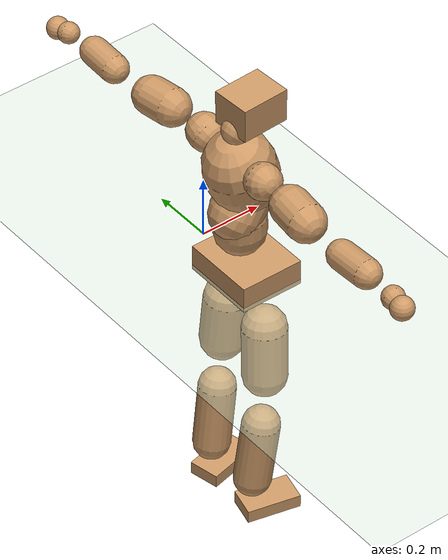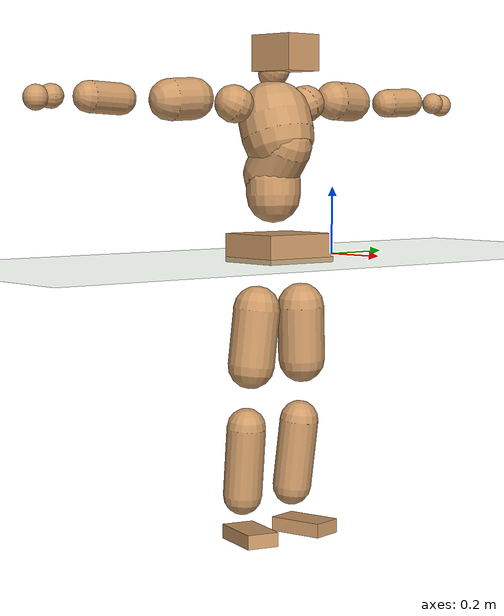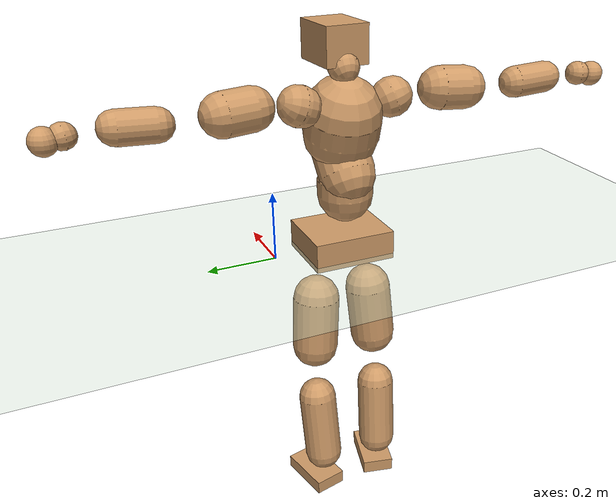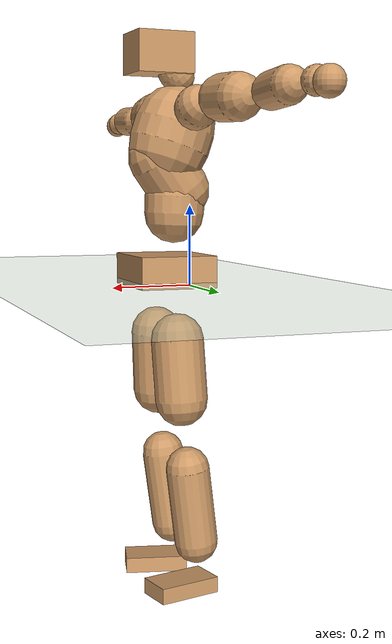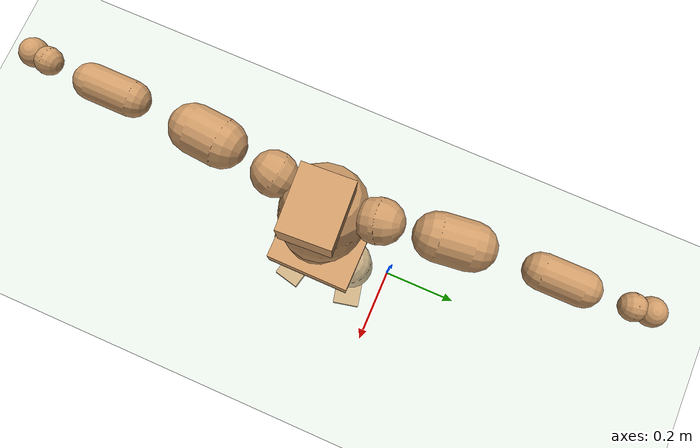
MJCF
<mujoco model="humanoid">
  <compiler coordinate="local" angle="radian"/>
  <default>
    <joint damping="0.0" armature="0.01" stiffness="0.0" limited="true"/>
    <geom conaffinity="1" condim="3" contype="7" margin="0.001" rgba="0.8 0.6 .4 1"/>
  </default>
  <asset>
    <texture type="skybox" builtin="gradient" rgb1=".4 .5 .6" rgb2="0 0 0" width="100" height="100"/>
    <texture builtin="flat" height="1278" mark="cross" markrgb="1 1 1" name="texgeom" random="0.01" rgb1="0.8 0.6 0.4" rgb2="0.8 0.6 0.4" type="cube" width="127"/>
    <texture builtin="checker" height="100" name="texplane" rgb1="0 0 0" rgb2="0.8 0.8 0.8" type="2d" width="100"/>
    <material name="MatPlane" reflectance="0.5" shininess="1" specular="1" texrepeat="60 60" texture="texplane"/>
    <material name="geom" texture="texgeom" texuniform="true"/>
  </asset>
  <worldbody>
    <light cutoff="100" diffuse="1 1 1" dir="-0 0 -1.3" directional="true" exponent="1" pos="0 0 1.3" specular=".1 .1 .1"/>
    <geom conaffinity="1" condim="3" name="floor" pos="0 0 0" rgba="0.8 0.9 0.8 1" size="100 100 .2" type="plane" material="MatPlane"/>
    <body name="Pelvis" pos="0.0008 -0.2057 0.038">
      <freejoint name="Pelvis"/>
      <geom type="box" contype="1" conaffinity="1" density="5359.375205" pos="-0.0057 0.0000 -0.0131" size="0.1025 0.12 0.0421" quat="1.0000 0.0000 0.0000 -0.0023" name="Pelvis"/>
      <body name="L_Hip" pos="-0.0038 0.0802 -0.092">
        <joint name="L_Hip_x" type="hinge" pos="0 0 0" axis="1 0 0" stiffness="1600" damping="160" armature="0.02" range="-180.0000 180.0000"/>
        <joint name="L_Hip_y" type="hinge" pos="0 0 0" axis="0 1 0" stiffness="1600" damping="160" armature="0.02" range="-180.0000 180.0000"/>
        <joint name="L_Hip_z" type="hinge" pos="0 0 0" axis="0 0 1" stiffness="1600" damping="160" armature="0.02" range="-180.0000 180.0000"/>
        <geom type="capsule" contype="1" conaffinity="1" density="2040.816327" size="0.0694" fromto="-0.0046 0.0067 -0.0990 -0.0121 0.0175 -0.2595" name="L_Hip"/>
        <body name="L_Knee" pos="-0.0167 0.0241 -0.3585">
          <joint name="L_Knee_x" type="hinge" pos="0 0 0" axis="1 0 0" stiffness="1600" damping="160" armature="0.02" range="-180.0000 180.0000"/>
          <joint name="L_Knee_y" type="hinge" pos="0 0 0" axis="0 1 0" stiffness="1600" damping="160" armature="0.02" range="-180.0000 180.0000"/>
          <joint name="L_Knee_z" type="hinge" pos="0 0 0" axis="0 0 1" stiffness="1600" damping="160" armature="0.02" range="-180.0000 180.0000"/>
          <geom type="capsule" contype="1" conaffinity="1" density="1234.567901" size="0.0582" fromto="-0.0112 -0.0025 -0.0874 -0.0373 -0.0082 -0.2919" name="L_Knee"/>
          <body name="L_Ankle" pos="-0.0485 -0.0107 -0.3793">
            <joint name="L_Ankle_x" type="hinge" pos="0 0 0" axis="1 0 0" stiffness="1600" damping="160" armature="0.02" range="-180.0000 180.0000"/>
            <joint name="L_Ankle_y" type="hinge" pos="0 0 0" axis="0 1 0" stiffness="1600" damping="160" armature="0.02" range="-180.0000 180.0000"/>
            <joint name="L_Ankle_z" type="hinge" pos="0 0 0" axis="0 0 1" stiffness="1600" damping="160" armature="0.02" range="-180.0000 180.0000"/>
            <geom type="box" contype="1" conaffinity="1" density="999.999995" pos="0.0577 0.0126 -0.0273" size="0.0853 0.0494 0.021" quat="0.9942 0.0000 0.0000 0.1077" name="L_Ankle"/>
            <body name="L_Toe" pos="0.1154 0.0253 -0.0547">
              <joint name="L_Toe_x" type="hinge" pos="0 0 0" axis="1 0 0" stiffness="1000" damping="100" armature="0.02" range="-180.0000 180.0000"/>
              <joint name="L_Toe_y" type="hinge" pos="0 0 0" axis="0 1 0" stiffness="1000" damping="100" armature="0.02" range="-180.0000 180.0000"/>
              <joint name="L_Toe_z" type="hinge" pos="0 0 0" axis="0 0 1" stiffness="1000" damping="100" armature="0.02" range="-180.0000 180.0000"/>
              <geom type="box" contype="1" conaffinity="1" density="8242498.66691" pos="0.0000 0.0000 0.0268" size="0.001 0.0025 0.001" quat="0.9935 0.0000 0.0000 0.1140" name="L_Toe"/>
            </body>
          </body>
        </body>
      </body>
      <body name="R_Hip" pos="-0.0011 -0.0779 -0.092">
        <joint name="R_Hip_x" type="hinge" pos="0 0 0" axis="1 0 0" stiffness="1600" damping="160" armature="0.02" range="-180.0000 180.0000"/>
        <joint name="R_Hip_y" type="hinge" pos="0 0 0" axis="0 1 0" stiffness="1600" damping="160" armature="0.02" range="-180.0000 180.0000"/>
        <joint name="R_Hip_z" type="hinge" pos="0 0 0" axis="0 0 1" stiffness="1600" damping="160" armature="0.02" range="-180.0000 180.0000"/>
        <geom type="capsule" contype="1" conaffinity="1" density="2040.816327" size="0.0687" fromto="-0.0051 -0.0082 -0.0982 -0.0138 -0.0220 -0.2634" name="R_Hip"/>
        <body name="R_Knee" pos="-0.0189 -0.0302 -0.3616">
          <joint name="R_Knee_x" type="hinge" pos="0 0 0" axis="1 0 0" stiffness="1600" damping="160" armature="0.02" range="-180.0000 180.0000"/>
          <joint name="R_Knee_y" type="hinge" pos="0 0 0" axis="0 1 0" stiffness="1600" damping="160" armature="0.02" range="-180.0000 180.0000"/>
          <joint name="R_Knee_z" type="hinge" pos="0 0 0" axis="0 0 1" stiffness="1600" damping="160" armature="0.02" range="-180.0000 180.0000"/>
          <geom type="capsule" contype="1" conaffinity="1" density="1234.567901" size="0.0581" fromto="-0.0110 0.0029 -0.0873 -0.0369 0.0097 -0.2926" name="R_Knee"/>
          <body name="R_Ankle" pos="-0.0479 0.0126 -0.38">
            <joint name="R_Ankle_x" type="hinge" pos="0 0 0" axis="1 0 0" stiffness="1600" damping="160" armature="0.02" range="-180.0000 180.0000"/>
            <joint name="R_Ankle_y" type="hinge" pos="0 0 0" axis="0 1 0" stiffness="1600" damping="160" armature="0.02" range="-180.0000 180.0000"/>
            <joint name="R_Ankle_z" type="hinge" pos="0 0 0" axis="0 0 1" stiffness="1600" damping="160" armature="0.02" range="-180.0000 180.0000"/>
            <geom type="box" contype="1" conaffinity="1" density="999.999989" pos="0.0599 -0.0143 -0.0233" size="0.0853 0.0491 0.0211" quat="0.9932 0.0000 0.0000 -0.1166" name="R_Ankle"/>
            <body name="R_Toe" pos="0.1198 -0.0285 -0.0466">
              <joint name="R_Toe_x" type="hinge" pos="0 0 0" axis="1 0 0" stiffness="1000" damping="100" armature="0.02" range="-180.0000 180.0000"/>
              <joint name="R_Toe_y" type="hinge" pos="0 0 0" axis="0 1 0" stiffness="1000" damping="100" armature="0.02" range="-180.0000 180.0000"/>
              <joint name="R_Toe_z" type="hinge" pos="0 0 0" axis="0 0 1" stiffness="1000" damping="100" armature="0.02" range="-180.0000 180.0000"/>
              <geom type="box" contype="1" conaffinity="1" density="7766632.351946" pos="0.0000 0.0000 0.0246" size="0.001 0.0025 0.0011" quat="0.9943 0.0000 0.0000 -0.1070" name="R_Toe"/>
            </body>
          </body>
        </body>
      </body>
      <body name="Torso" pos="-0.0293 -0.0021 0.1056">
        <joint name="Torso_x" type="hinge" pos="0 0 0" axis="1 0 0" stiffness="2000" damping="200" armature="0.02" range="-180.0000 180.0000"/>
        <joint name="Torso_y" type="hinge" pos="0 0 0" axis="0 1 0" stiffness="2000" damping="200" armature="0.02" range="-180.0000 180.0000"/>
        <joint name="Torso_z" type="hinge" pos="0 0 0" axis="0 0 1" stiffness="2000" damping="200" armature="0.02" range="-180.0000 180.0000"/>
        <geom type="capsule" contype="1" conaffinity="1" density="2040.816327" size="0.0799" fromto="-0.0025 0.0014 0.0798 -0.0011 0.0006 0.0335" name="Torso"/>
        <body name="Spine" pos="-0.0036 0.002 0.1134">
          <joint name="Spine_x" type="hinge" pos="0 0 0" axis="1 0 0" stiffness="2000" damping="200" armature="0.02" range="-180.0000 180.0000"/>
          <joint name="Spine_y" type="hinge" pos="0 0 0" axis="0 1 0" stiffness="2000" damping="200" armature="0.02" range="-180.0000 180.0000"/>
          <joint name="Spine_z" type="hinge" pos="0 0 0" axis="0 0 1" stiffness="2000" damping="200" armature="0.02" range="-180.0000 180.0000"/>
          <geom type="capsule" contype="1" conaffinity="1" density="2040.816327" size="0.0808" fromto="0.0473 0.0035 0.0654 -0.0129 -0.0009 -0.0179" name="Spine"/>
          <body name="Chest" pos="0.0344 0.0025 0.0475">
            <joint name="Chest_x" type="hinge" pos="0 0 0" axis="1 0 0" stiffness="2000" damping="200" armature="0.02" range="-180.0000 180.0000"/>
            <joint name="Chest_y" type="hinge" pos="0 0 0" axis="0 1 0" stiffness="2000" damping="200" armature="0.02" range="-180.0000 180.0000"/>
            <joint name="Chest_z" type="hinge" pos="0 0 0" axis="0 0 1" stiffness="2000" damping="200" armature="0.02" range="-180.0000 180.0000"/>
            <geom type="capsule" contype="1" conaffinity="1" density="2040.816327" size="0.1076" fromto="-0.0334 0.0003 0.1023 -0.0162 0.0001 0.0496" name="Chest"/>
            <body name="Neck" pos="-0.0603 0.0019 0.2098">
              <joint name="Neck_x" type="hinge" pos="0 0 0" axis="1 0 0" stiffness="1000" damping="100" armature="0.02" range="-180.0000 180.0000"/>
              <joint name="Neck_y" type="hinge" pos="0 0 0" axis="0 1 0" stiffness="1000" damping="100" armature="0.02" range="-180.0000 180.0000"/>
              <joint name="Neck_z" type="hinge" pos="0 0 0" axis="0 0 1" stiffness="1000" damping="100" armature="0.02" range="-180.0000 180.0000"/>
              <geom type="capsule" contype="1" conaffinity="1" density="1000" size="0.0432" fromto="0.0295 0.0004 0.0315 0.0180 0.0003 0.0193" name="Neck"/>
              <body name="Head" pos="0.0475 0.0007 0.0508">
                <joint name="Head_x" type="hinge" pos="0 0 0" axis="1 0 0" stiffness="1000" damping="100" armature="0.02" range="-180.0000 180.0000"/>
                <joint name="Head_y" type="hinge" pos="0 0 0" axis="0 1 0" stiffness="1000" damping="100" armature="0.02" range="-180.0000 180.0000"/>
                <joint name="Head_z" type="hinge" pos="0 0 0" axis="0 0 1" stiffness="1000" damping="100" armature="0.02" range="-180.0000 180.0000"/>
                <geom type="box" contype="1" conaffinity="1" density="2249.999846" pos="0.0248 0.0013 0.0264" size="0.0768 0.0619 0.0529" quat="0.9996 0.0000 0.0000 0.0272" name="Head"/>
              </body>
            </body>
            <body name="L_Thorax" pos="-0.0415 0.0846 0.1241">
              <joint name="L_Thorax_x" type="hinge" pos="0 0 0" axis="1 0 0" stiffness="1000" damping="100" armature="0.02" range="-180.0000 180.0000"/>
              <joint name="L_Thorax_y" type="hinge" pos="0 0 0" axis="0 1 0" stiffness="1000" damping="100" armature="0.02" range="-180.0000 180.0000"/>
              <joint name="L_Thorax_z" type="hinge" pos="0 0 0" axis="0 0 1" stiffness="1000" damping="100" armature="0.02" range="-180.0000 180.0000"/>
              <geom type="capsule" contype="1" conaffinity="1" density="1000" size="0.0557" fromto="-0.0066 0.0518 0.0193 -0.0052 0.0410 0.0153" name="L_Thorax"/>
              <body name="L_Shoulder" pos="-0.0117 0.0928 0.0346">
                <joint name="L_Shoulder_x" type="hinge" pos="0 0 0" axis="1 0 0" stiffness="1000" damping="100" armature="0.02" range="-720.0000 720.0000"/>
                <joint name="L_Shoulder_y" type="hinge" pos="0 0 0" axis="0 1 0" stiffness="1000" damping="100" armature="0.02" range="-720.0000 720.0000"/>
                <joint name="L_Shoulder_z" type="hinge" pos="0 0 0" axis="0 0 1" stiffness="1000" damping="100" armature="0.02" range="-720.0000 720.0000"/>
                <geom type="capsule" contype="1" conaffinity="1" density="1000" size="0.0588" fromto="-0.0110 0.0881 -0.0036 -0.0209 0.1683 -0.0068" name="L_Shoulder"/>
                <body name="L_Elbow" pos="-0.0319 0.2564 -0.0104">
                  <joint name="L_Elbow_x" type="hinge" pos="0 0 0" axis="1 0 0" stiffness="1000" damping="100" armature="0.02" range="-720.0000 720.0000"/>
                  <joint name="L_Elbow_y" type="hinge" pos="0 0 0" axis="0 1 0" stiffness="1000" damping="100" armature="0.02" range="-720.0000 720.0000"/>
                  <joint name="L_Elbow_z" type="hinge" pos="0 0 0" axis="0 0 1" stiffness="1000" damping="100" armature="0.02" range="-720.0000 720.0000"/>
                  <geom type="capsule" contype="1" conaffinity="1" density="1000" size="0.0439" fromto="0.0007 0.0738 0.0032 0.0016 0.1703 0.0075" name="L_Elbow"/>
                  <body name="L_Wrist" pos="0.0023 0.2441 0.0107">
                    <joint name="L_Wrist_x" type="hinge" pos="0 0 0" axis="1 0 0" stiffness="600" damping="60" armature="0.02" range="-180.0000 180.0000"/>
                    <joint name="L_Wrist_y" type="hinge" pos="0 0 0" axis="0 1 0" stiffness="600" damping="60" armature="0.02" range="-180.0000 180.0000"/>
                    <joint name="L_Wrist_z" type="hinge" pos="0 0 0" axis="0 0 1" stiffness="600" damping="60" armature="0.02" range="-180.0000 180.0000"/>
                    <geom type="capsule" contype="1" conaffinity="1" density="1000" size="0.0328" fromto="-0.0068 0.0419 -0.0050 -0.0072 0.0439 -0.0052" name="L_Wrist"/>
                    <body name="L_Hand" pos="-0.014 0.0857 -0.0101">
                      <joint name="L_Hand_x" type="hinge" pos="0 0 0" axis="1 0 0" stiffness="600" damping="60" armature="0.02" range="-180.0000 180.0000"/>
                      <joint name="L_Hand_y" type="hinge" pos="0 0 0" axis="0 1 0" stiffness="600" damping="60" armature="0.02" range="-180.0000 180.0000"/>
                      <joint name="L_Hand_z" type="hinge" pos="0 0 0" axis="0 0 1" stiffness="600" damping="60" armature="0.02" range="-180.0000 180.0000"/>
                      <geom type="sphere" contype="1" conaffinity="1" density="1000" size="0.0346" pos="0.0000 0.0000 0.0000" name="L_Hand"/>
                    </body>
                  </body>
                </body>
              </body>
            </body>
            <body name="R_Thorax" pos="-0.0471 -0.0853 0.1216">
              <joint name="R_Thorax_x" type="hinge" pos="0 0 0" axis="1 0 0" stiffness="1000" damping="100" armature="0.02" range="-180.0000 180.0000"/>
              <joint name="R_Thorax_y" type="hinge" pos="0 0 0" axis="0 1 0" stiffness="1000" damping="100" armature="0.02" range="-180.0000 180.0000"/>
              <joint name="R_Thorax_z" type="hinge" pos="0 0 0" axis="0 0 1" stiffness="1000" damping="100" armature="0.02" range="-180.0000 180.0000"/>
              <geom type="capsule" contype="1" conaffinity="1" density="1000" size="0.0553" fromto="-0.0073 -0.0516 0.0186 -0.0066 -0.0469 0.0169" name="R_Thorax"/>
              <body name="R_Shoulder" pos="-0.0139 -0.0985 0.0355">
                <joint name="R_Shoulder_x" type="hinge" pos="0 0 0" axis="1 0 0" stiffness="1000" damping="100" armature="0.02" range="-720.0000 720.0000"/>
                <joint name="R_Shoulder_y" type="hinge" pos="0 0 0" axis="0 1 0" stiffness="1000" damping="100" armature="0.02" range="-720.0000 720.0000"/>
                <joint name="R_Shoulder_z" type="hinge" pos="0 0 0" axis="0 0 1" stiffness="1000" damping="100" armature="0.02" range="-720.0000 720.0000"/>
                <geom type="capsule" contype="1" conaffinity="1" density="1000" size="0.0605" fromto="-0.0085 -0.0899 -0.0049 -0.0156 -0.1660 -0.0090" name="R_Shoulder"/>
                <body name="R_Elbow" pos="-0.0241 -0.256 -0.0139">
                  <joint name="R_Elbow_x" type="hinge" pos="0 0 0" axis="1 0 0" stiffness="1000" damping="100" armature="0.02" range="-720.0000 720.0000"/>
                  <joint name="R_Elbow_y" type="hinge" pos="0 0 0" axis="0 1 0" stiffness="1000" damping="100" armature="0.02" range="-720.0000 720.0000"/>
                  <joint name="R_Elbow_z" type="hinge" pos="0 0 0" axis="0 0 1" stiffness="1000" damping="100" armature="0.02" range="-720.0000 720.0000"/>
                  <geom type="capsule" contype="1" conaffinity="1" density="1000" size="0.0444" fromto="0.0002 -0.0744 0.0036 0.0004 -0.1788 0.0086" name="R_Elbow"/>
                  <body name="R_Wrist" pos="0.0006 -0.2532 0.0121">
                    <joint name="R_Wrist_x" type="hinge" pos="0 0 0" axis="1 0 0" stiffness="600" damping="60" armature="0.02" range="-180.0000 180.0000"/>
                    <joint name="R_Wrist_y" type="hinge" pos="0 0 0" axis="0 1 0" stiffness="600" damping="60" armature="0.02" range="-180.0000 180.0000"/>
                    <joint name="R_Wrist_z" type="hinge" pos="0 0 0" axis="0 0 1" stiffness="600" damping="60" armature="0.02" range="-180.0000 180.0000"/>
                    <geom type="capsule" contype="1" conaffinity="1" density="1000" size="0.0341" fromto="-0.0057 -0.0430 -0.0039 -0.0060 -0.0450 -0.0041" name="R_Wrist"/>
                    <body name="R_Hand" pos="-0.0117 -0.0879 -0.008">
                      <joint name="R_Hand_x" type="hinge" pos="0 0 0" axis="1 0 0" stiffness="600" damping="60" armature="0.02" range="-180.0000 180.0000"/>
                      <joint name="R_Hand_y" type="hinge" pos="0 0 0" axis="0 1 0" stiffness="600" damping="60" armature="0.02" range="-180.0000 180.0000"/>
                      <joint name="R_Hand_z" type="hinge" pos="0 0 0" axis="0 0 1" stiffness="600" damping="60" armature="0.02" range="-180.0000 180.0000"/>
                      <geom type="sphere" contype="1" conaffinity="1" density="1000" size="0.0354" pos="0.0000 0.0000 0.0000" name="R_Hand"/>
                    </body>
                  </body>
                </body>
              </body>
            </body>
          </body>
        </body>
      </body>
    </body>
  </worldbody>
  <actuator>
    <motor name="L_Hip_x" joint="L_Hip_x" gear="500"/>
    <motor name="L_Hip_y" joint="L_Hip_y" gear="500"/>
    <motor name="L_Hip_z" joint="L_Hip_z" gear="500"/>
    <motor name="L_Knee_x" joint="L_Knee_x" gear="500"/>
    <motor name="L_Knee_y" joint="L_Knee_y" gear="500"/>
    <motor name="L_Knee_z" joint="L_Knee_z" gear="500"/>
    <motor name="L_Ankle_x" joint="L_Ankle_x" gear="500"/>
    <motor name="L_Ankle_y" joint="L_Ankle_y" gear="500"/>
    <motor name="L_Ankle_z" joint="L_Ankle_z" gear="500"/>
    <motor name="L_Toe_x" joint="L_Toe_x" gear="500"/>
    <motor name="L_Toe_y" joint="L_Toe_y" gear="500"/>
    <motor name="L_Toe_z" joint="L_Toe_z" gear="500"/>
    <motor name="R_Hip_x" joint="R_Hip_x" gear="500"/>
    <motor name="R_Hip_y" joint="R_Hip_y" gear="500"/>
    <motor name="R_Hip_z" joint="R_Hip_z" gear="500"/>
    <motor name="R_Knee_x" joint="R_Knee_x" gear="500"/>
    <motor name="R_Knee_y" joint="R_Knee_y" gear="500"/>
    <motor name="R_Knee_z" joint="R_Knee_z" gear="500"/>
    <motor name="R_Ankle_x" joint="R_Ankle_x" gear="500"/>
    <motor name="R_Ankle_y" joint="R_Ankle_y" gear="500"/>
    <motor name="R_Ankle_z" joint="R_Ankle_z" gear="500"/>
    <motor name="R_Toe_x" joint="R_Toe_x" gear="500"/>
    <motor name="R_Toe_y" joint="R_Toe_y" gear="500"/>
    <motor name="R_Toe_z" joint="R_Toe_z" gear="500"/>
    <motor name="Torso_x" joint="Torso_x" gear="500"/>
    <motor name="Torso_y" joint="Torso_y" gear="500"/>
    <motor name="Torso_z" joint="Torso_z" gear="500"/>
    <motor name="Spine_x" joint="Spine_x" gear="500"/>
    <motor name="Spine_y" joint="Spine_y" gear="500"/>
    <motor name="Spine_z" joint="Spine_z" gear="500"/>
    <motor name="Chest_x" joint="Chest_x" gear="500"/>
    <motor name="Chest_y" joint="Chest_y" gear="500"/>
    <motor name="Chest_z" joint="Chest_z" gear="500"/>
    <motor name="Neck_x" joint="Neck_x" gear="500"/>
    <motor name="Neck_y" joint="Neck_y" gear="500"/>
    <motor name="Neck_z" joint="Neck_z" gear="500"/>
    <motor name="Head_x" joint="Head_x" gear="500"/>
    <motor name="Head_y" joint="Head_y" gear="500"/>
    <motor name="Head_z" joint="Head_z" gear="500"/>
    <motor name="L_Thorax_x" joint="L_Thorax_x" gear="500"/>
    <motor name="L_Thorax_y" joint="L_Thorax_y" gear="500"/>
    <motor name="L_Thorax_z" joint="L_Thorax_z" gear="500"/>
    <motor name="L_Shoulder_x" joint="L_Shoulder_x" gear="500"/>
    <motor name="L_Shoulder_y" joint="L_Shoulder_y" gear="500"/>
    <motor name="L_Shoulder_z" joint="L_Shoulder_z" gear="500"/>
    <motor name="L_Elbow_x" joint="L_Elbow_x" gear="500"/>
    <motor name="L_Elbow_y" joint="L_Elbow_y" gear="500"/>
    <motor name="L_Elbow_z" joint="L_Elbow_z" gear="500"/>
    <motor name="L_Wrist_x" joint="L_Wrist_x" gear="500"/>
    <motor name="L_Wrist_y" joint="L_Wrist_y" gear="500"/>
    <motor name="L_Wrist_z" joint="L_Wrist_z" gear="500"/>
    <motor name="L_Hand_x" joint="L_Hand_x" gear="500"/>
    <motor name="L_Hand_y" joint="L_Hand_y" gear="500"/>
    <motor name="L_Hand_z" joint="L_Hand_z" gear="500"/>
    <motor name="R_Thorax_x" joint="R_Thorax_x" gear="500"/>
    <motor name="R_Thorax_y" joint="R_Thorax_y" gear="500"/>
    <motor name="R_Thorax_z" joint="R_Thorax_z" gear="500"/>
    <motor name="R_Shoulder_x" joint="R_Shoulder_x" gear="500"/>
    <motor name="R_Shoulder_y" joint="R_Shoulder_y" gear="500"/>
    <motor name="R_Shoulder_z" joint="R_Shoulder_z" gear="500"/>
    <motor name="R_Elbow_x" joint="R_Elbow_x" gear="500"/>
    <motor name="R_Elbow_y" joint="R_Elbow_y" gear="500"/>
    <motor name="R_Elbow_z" joint="R_Elbow_z" gear="500"/>
    <motor name="R_Wrist_x" joint="R_Wrist_x" gear="500"/>
    <motor name="R_Wrist_y" joint="R_Wrist_y" gear="500"/>
    <motor name="R_Wrist_z" joint="R_Wrist_z" gear="500"/>
    <motor name="R_Hand_x" joint="R_Hand_x" gear="500"/>
    <motor name="R_Hand_y" joint="R_Hand_y" gear="500"/>
    <motor name="R_Hand_z" joint="R_Hand_z" gear="500"/>
  </actuator>
  <contact>
    <exclude body1="Torso" body2="Chest"/>
    <exclude body1="Head" body2="Chest"/>
    <exclude body1="R_Knee" body2="R_Toe"/>
    <exclude body1="R_Knee" body2="L_Ankle"/>
    <exclude body1="R_Knee" body2="L_Toe"/>
    <exclude body1="L_Knee" body2="L_Toe"/>
    <exclude body1="L_Knee" body2="R_Ankle"/>
    <exclude body1="L_Knee" body2="R_Toe"/>
    <exclude body1="L_Shoulder" body2="Chest"/>
    <exclude body1="R_Shoulder" body2="Chest"/>
  </contact>
  <sensor/>
  <size njmax="700" nconmax="700"/>
</mujoco>
